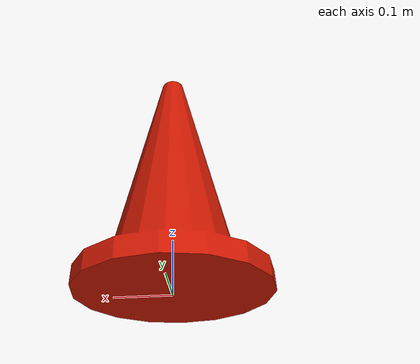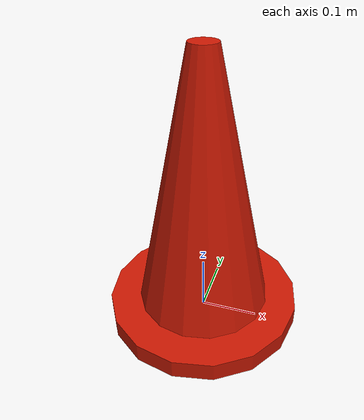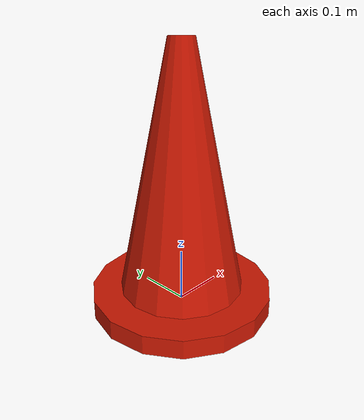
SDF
<?xml version='1.0'?>
<sdf version='1.4'>
  <model name="orange_cone">
    <link name="link">
      <collision name="collision">
        <geometry>
          <mesh>
            <uri>/home/xristos/.gazebo/models/orange_cone/orange_cone.dae</uri>
     	      <scale>1.5 1.5 1.5</scale>
          </mesh>
        </geometry>
      </collision>
      <visual name="visual">
        <geometry>
          <mesh>
            <uri>/home/xristos/.gazebo/models/orange_cone/orange_cone.dae</uri>
            <scale>1.5 1.5 1.5</scale>
          </mesh>
        </geometry>
      </visual>
    </link>
  </model>
</sdf>
